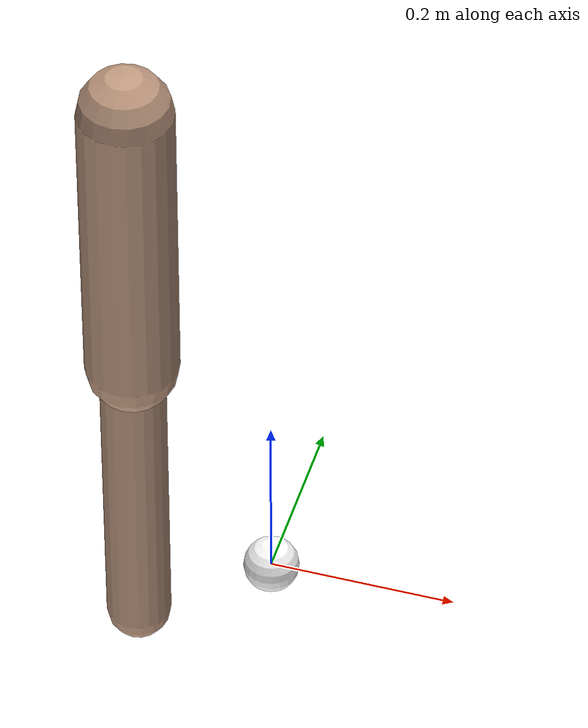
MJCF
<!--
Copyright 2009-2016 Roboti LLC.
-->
<mujoco model="arm_claw (v1.31)">
	<compiler 	inertiafromgeom="true"
				angle="radian"/>

	<size 	nuser_jnt="1"
			nuser_geom="1"/>

	<option	timestep="0.001"
			gravity="0 0 0"
			viscosity="0"
			iterations="20"/>

	<asset>
		<material name="MatGnd" specular=".3" shininess=".3" reflectance="0.3" rgba=".5 .55 .5 1"/>
	</asset>

	<default>
		<joint limited="true" damping="1" stiffness="0" armature=".1" user="0"/>
		<geom solref="0.008 1" solimp="0.95 0.95 0.01" margin="0.001" user="0"/>
		<motor ctrllimited="true" ctrlrange="-1 1"/>
		<position ctrllimited="true"/>

		<default class='0'>
			<geom friction="1 0.005 0.001" rgba=".75 .6 .5 1" contype="1" conaffinity="0"/>
		</default>

		<default class='1'>
			<geom friction="1 0.005 0.001" rgba=".7 .6 .55 1" contype="1" conaffinity="0"/>
		</default>

		<default class='arm'>
			<joint damping="5"/>
		</default>
	</default>

	<worldbody>
		<light directional="true" cutoff="40" exponent="10" diffuse=".4 .4 .4" specular=".7 .7 .7" pos="0 0 1.5" dir="0 0 -1"/>
		<!--  ================= ARM ================= /-->
		<body name="upperarm" pos="-0.15 0 0.6">
			<geom class="0" type="capsule" fromto="0 0 0 0 0 -0.345" size="0.05"/>
			<joint class='arm' name="s_abduction" type="hinge" pos="0 0 0" axis="1 0 0" range="-1.57 .7" user="001"/>
			<joint class='arm' name="s_flexion" type="hinge" pos="0 0 0" axis="0 -1 0" range="-.85 1.57" user="002"/>
			<joint class='arm' name="s_rotation" type="hinge" pos="0 0 0" axis="0 0 1" range="-.85 .85" user="003"/>

			<body name="forearm" pos="0 0 -0.36">
				<geom class="0" type="capsule"  fromto="0 0 0 0 0 -0.35" size="0.035"/>
				<joint class='arm' name="e_flexion" type="hinge" pos="0 0 0" axis="0 -1 0" range="-1.5 1.05" user="004"/>
				<joint class='arm' name="e_pronation" type="hinge" pos="0 0 0" axis="-1 0 0" range="-1.5 1.57" user="005"/>
			</body>

		</body>

		<!--  ================= OBJECT ================= /-->
		<body name="object" pos="0 0 0">
			<geom type="sphere" name="geom_object" size="0.025"  rgba="0.5 0.6 0.8 1" user="1" contype="1" conaffinity="1"/>
			<site name='object' type='sphere' size='0.03' rgba='1 1 1 1' />
			<joint name='slide3' type='slide' range='0 0.2' axis='1 0 0' />
			<joint name='slide4' type='slide' range='0 0.2' axis='0 1 0' />
			<joint name='slide5' type='slide' range='0 0.2' axis='0 0 1' />
		</body>

		<!-- ================== OBSTACLE ================ /-->
		<body name="safety" pos="0.1 0.1 0.1">
			<site name='safety' type='sphere' size='0.03' rgba='1 1 1 0' />
		</body>
        <!-- ====================CAMERA===================/-->
        <camera name='camera1' mode='fixed' pos='0.9 -0.8 0.9' xyaxes='1 1 0 -1 1 2'/>
	</worldbody>

	<actuator>

		<!--  ================= Torque actuators ================= /-->

		<!--  ================= Position actuators ================= /-->
		<position joint='s_abduction' 	name='As_abduction' kp="100" ctrlrange='-1.57 .7'/>
		<position joint='s_flexion' 	name='As_flexion' 	kp="100" ctrlrange='-.85 1.57'/>
		<position joint='s_rotation' 	name='As_rotation' 	kp="100" ctrlrange='-.85 0.85'/>
		<position joint='e_flexion' 	name='Ae_flexion' 	kp="70"  ctrlrange='-1.5 1.05'/>
		<position joint='e_pronation' 	name='Ae_pronation' kp="70"  ctrlrange='-1.5 1.57'/>
	</actuator>

	<sensor>
		<touch name='object' site='object'/>
		<touch name='safety' site='safety'/>
	</sensor>
</mujoco>
